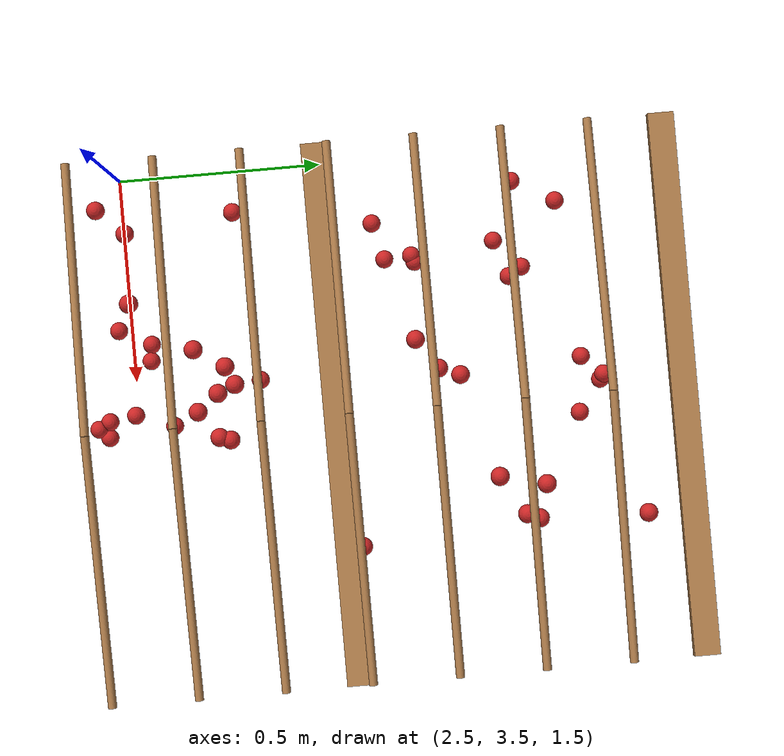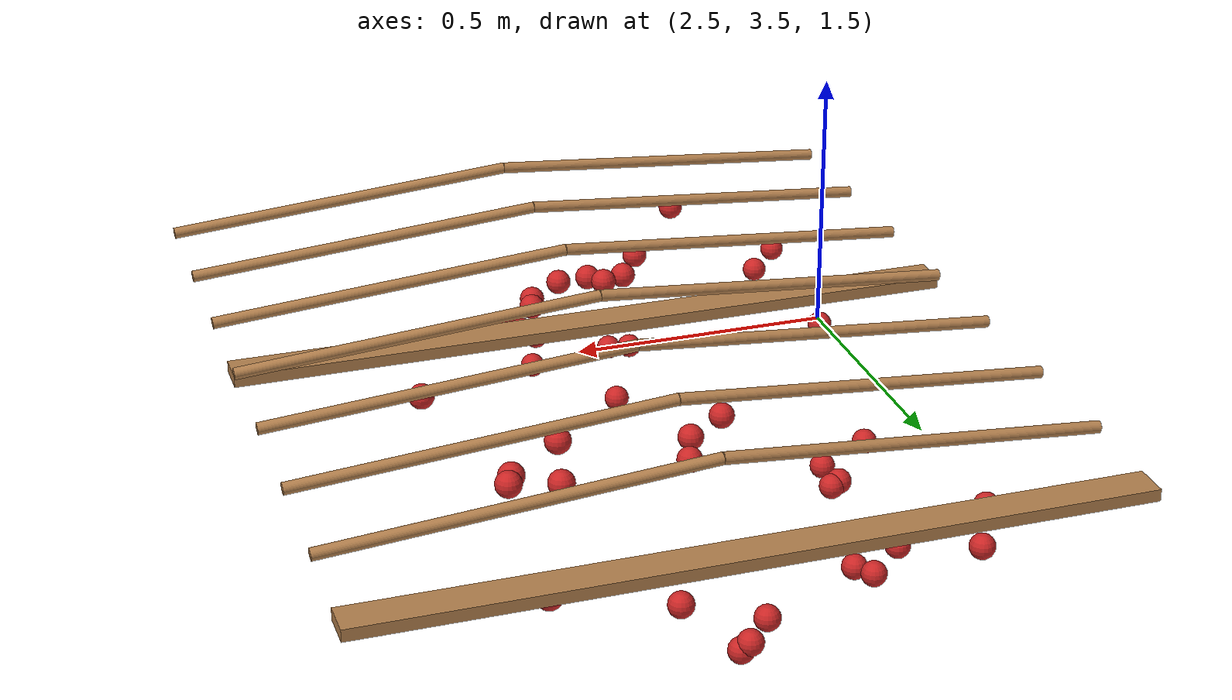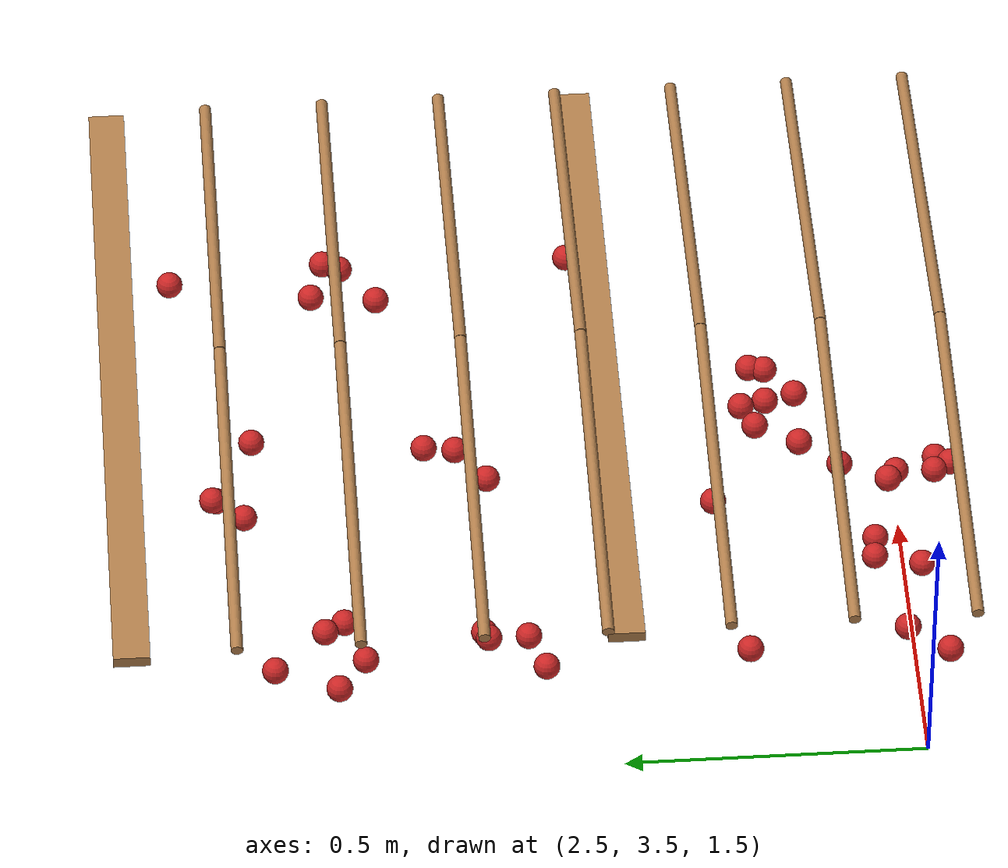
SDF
<sdf version="1.4">
 <model name="pergola">
  <link name="beam_19">
   <pose>3.125 4.0 1.81 0 0 0</pose>
   <collision name="collision"><geometry><box><size>1.25 0.06 0.02</size></box></geometry></collision>
   <visual name="visual">
    <geometry><box><size>1.25 0.06 0.02</size></box></geometry>
    <material><script><name>Gazebo/Wood</name></script></material>
   </visual>
   <inertial>
    <mass>5</mass>
    <inertia>
     <ixx>0.0016666666666666668</ixx>
     <ixy>0.0</ixy>
     <ixz>0.0</ixz>
     <iyy>0.6525416666666667</iyy>
     <iyz>0.0</iyz>
     <izz>0.6512083333333333</izz>
    </inertia>
   </inertial>
  </link>
  <link name="beam_20">
   <pose>3.125 4.800000000000001 1.81 0 0 0</pose>
   <collision name="collision"><geometry><box><size>1.25 0.06 0.02</size></box></geometry></collision>
   <visual name="visual">
    <geometry><box><size>1.25 0.06 0.02</size></box></geometry>
    <material><script><name>Gazebo/Wood</name></script></material>
   </visual>
   <inertial>
    <mass>5</mass>
    <inertia>
     <ixx>0.0016666666666666668</ixx>
     <ixy>0.0</ixy>
     <ixz>0.0</ixz>
     <iyy>0.6525416666666667</iyy>
     <iyz>0.0</iyz>
     <izz>0.6512083333333333</izz>
    </inertia>
   </inertial>
  </link>
  <link name="vine_130">
   <pose>2.8125 3.43 1.85 0 1.4909663410826592 0</pose>
   <collision name="collision">
    <geometry><cylinder><radius>0.01</radius><length>0.6269968101992226</length></cylinder></geometry>
   </collision>
   <visual name="visual">
    <geometry><cylinder><radius>0.01</radius><length>0.6269968101992226</length></cylinder></geometry>
    <material><script><name>Gazebo/WoodFloor</name></script></material>
   </visual>
   <inertial>
    <mass>5</mass>
    <inertia>
     <ixx>0.1639270833333333</ixx>
     <ixy>0.0</ixy>
     <ixz>0.0</ixz>
     <iyy>0.1639270833333333</iyy>
     <iyz>0.0</iyz>
     <izz>0.00025</izz>
    </inertia>
   </inertial>
  </link>
  <link name="vine_131">
   <pose>3.4375 3.43 1.85 0 -1.4909663410826592 0</pose>
   <collision name="collision">
    <geometry><cylinder><radius>0.01</radius><length>0.6269968101992226</length></cylinder></geometry>
   </collision>
   <visual name="visual">
    <geometry><cylinder><radius>0.01</radius><length>0.6269968101992226</length></cylinder></geometry>
    <material><script><name>Gazebo/WoodFloor</name></script></material>
   </visual>
   <inertial>
    <mass>5</mass>
    <inertia>
     <ixx>0.1639270833333333</ixx>
     <ixy>0.0</ixy>
     <ixz>0.0</ixz>
     <iyy>0.1639270833333333</iyy>
     <iyz>0.0</iyz>
     <izz>0.00025</izz>
    </inertia>
   </inertial>
  </link>
  <link name="vine_132">
   <pose>2.8125 3.63 1.85 0 1.4909663410826592 0</pose>
   <collision name="collision">
    <geometry><cylinder><radius>0.01</radius><length>0.6269968101992226</length></cylinder></geometry>
   </collision>
   <visual name="visual">
    <geometry><cylinder><radius>0.01</radius><length>0.6269968101992226</length></cylinder></geometry>
    <material><script><name>Gazebo/WoodFloor</name></script></material>
   </visual>
   <inertial>
    <mass>5</mass>
    <inertia>
     <ixx>0.1639270833333333</ixx>
     <ixy>0.0</ixy>
     <ixz>0.0</ixz>
     <iyy>0.1639270833333333</iyy>
     <iyz>0.0</iyz>
     <izz>0.00025</izz>
    </inertia>
   </inertial>
  </link>
  <link name="vine_133">
   <pose>3.4375 3.63 1.85 0 -1.4909663410826592 0</pose>
   <collision name="collision">
    <geometry><cylinder><radius>0.01</radius><length>0.6269968101992226</length></cylinder></geometry>
   </collision>
   <visual name="visual">
    <geometry><cylinder><radius>0.01</radius><length>0.6269968101992226</length></cylinder></geometry>
    <material><script><name>Gazebo/WoodFloor</name></script></material>
   </visual>
   <inertial>
    <mass>5</mass>
    <inertia>
     <ixx>0.1639270833333333</ixx>
     <ixy>0.0</ixy>
     <ixz>0.0</ixz>
     <iyy>0.1639270833333333</iyy>
     <iyz>0.0</iyz>
     <izz>0.00025</izz>
    </inertia>
   </inertial>
  </link>
  <link name="vine_134">
   <pose>2.8125 3.83 1.85 0 1.4909663410826592 0</pose>
   <collision name="collision">
    <geometry><cylinder><radius>0.01</radius><length>0.6269968101992226</length></cylinder></geometry>
   </collision>
   <visual name="visual">
    <geometry><cylinder><radius>0.01</radius><length>0.6269968101992226</length></cylinder></geometry>
    <material><script><name>Gazebo/WoodFloor</name></script></material>
   </visual>
   <inertial>
    <mass>5</mass>
    <inertia>
     <ixx>0.1639270833333333</ixx>
     <ixy>0.0</ixy>
     <ixz>0.0</ixz>
     <iyy>0.1639270833333333</iyy>
     <iyz>0.0</iyz>
     <izz>0.00025</izz>
    </inertia>
   </inertial>
  </link>
  <link name="vine_135">
   <pose>3.4375 3.83 1.85 0 -1.4909663410826592 0</pose>
   <collision name="collision">
    <geometry><cylinder><radius>0.01</radius><length>0.6269968101992226</length></cylinder></geometry>
   </collision>
   <visual name="visual">
    <geometry><cylinder><radius>0.01</radius><length>0.6269968101992226</length></cylinder></geometry>
    <material><script><name>Gazebo/WoodFloor</name></script></material>
   </visual>
   <inertial>
    <mass>5</mass>
    <inertia>
     <ixx>0.1639270833333333</ixx>
     <ixy>0.0</ixy>
     <ixz>0.0</ixz>
     <iyy>0.1639270833333333</iyy>
     <iyz>0.0</iyz>
     <izz>0.00025</izz>
    </inertia>
   </inertial>
  </link>
  <link name="vine_136">
   <pose>2.8125 4.03 1.85 0 1.4909663410826592 0</pose>
   <collision name="collision">
    <geometry><cylinder><radius>0.01</radius><length>0.6269968101992226</length></cylinder></geometry>
   </collision>
   <visual name="visual">
    <geometry><cylinder><radius>0.01</radius><length>0.6269968101992226</length></cylinder></geometry>
    <material><script><name>Gazebo/WoodFloor</name></script></material>
   </visual>
   <inertial>
    <mass>5</mass>
    <inertia>
     <ixx>0.1639270833333333</ixx>
     <ixy>0.0</ixy>
     <ixz>0.0</ixz>
     <iyy>0.1639270833333333</iyy>
     <iyz>0.0</iyz>
     <izz>0.00025</izz>
    </inertia>
   </inertial>
  </link>
  <link name="vine_137">
   <pose>3.4375 4.03 1.85 0 -1.4909663410826592 0</pose>
   <collision name="collision">
    <geometry><cylinder><radius>0.01</radius><length>0.6269968101992226</length></cylinder></geometry>
   </collision>
   <visual name="visual">
    <geometry><cylinder><radius>0.01</radius><length>0.6269968101992226</length></cylinder></geometry>
    <material><script><name>Gazebo/WoodFloor</name></script></material>
   </visual>
   <inertial>
    <mass>5</mass>
    <inertia>
     <ixx>0.1639270833333333</ixx>
     <ixy>0.0</ixy>
     <ixz>0.0</ixz>
     <iyy>0.1639270833333333</iyy>
     <iyz>0.0</iyz>
     <izz>0.00025</izz>
    </inertia>
   </inertial>
  </link>
  <link name="vine_138">
   <pose>2.8125 4.23 1.85 0 1.4909663410826592 0</pose>
   <collision name="collision">
    <geometry><cylinder><radius>0.01</radius><length>0.6269968101992226</length></cylinder></geometry>
   </collision>
   <visual name="visual">
    <geometry><cylinder><radius>0.01</radius><length>0.6269968101992226</length></cylinder></geometry>
    <material><script><name>Gazebo/WoodFloor</name></script></material>
   </visual>
   <inertial>
    <mass>5</mass>
    <inertia>
     <ixx>0.1639270833333333</ixx>
     <ixy>0.0</ixy>
     <ixz>0.0</ixz>
     <iyy>0.1639270833333333</iyy>
     <iyz>0.0</iyz>
     <izz>0.00025</izz>
    </inertia>
   </inertial>
  </link>
  <link name="vine_139">
   <pose>3.4375 4.23 1.85 0 -1.4909663410826592 0</pose>
   <collision name="collision">
    <geometry><cylinder><radius>0.01</radius><length>0.6269968101992226</length></cylinder></geometry>
   </collision>
   <visual name="visual">
    <geometry><cylinder><radius>0.01</radius><length>0.6269968101992226</length></cylinder></geometry>
    <material><script><name>Gazebo/WoodFloor</name></script></material>
   </visual>
   <inertial>
    <mass>5</mass>
    <inertia>
     <ixx>0.1639270833333333</ixx>
     <ixy>0.0</ixy>
     <ixz>0.0</ixz>
     <iyy>0.1639270833333333</iyy>
     <iyz>0.0</iyz>
     <izz>0.00025</izz>
    </inertia>
   </inertial>
  </link>
  <link name="vine_140">
   <pose>2.8125 4.430000000000001 1.85 0 1.4909663410826592 0</pose>
   <collision name="collision">
    <geometry><cylinder><radius>0.01</radius><length>0.6269968101992226</length></cylinder></geometry>
   </collision>
   <visual name="visual">
    <geometry><cylinder><radius>0.01</radius><length>0.6269968101992226</length></cylinder></geometry>
    <material><script><name>Gazebo/WoodFloor</name></script></material>
   </visual>
   <inertial>
    <mass>5</mass>
    <inertia>
     <ixx>0.1639270833333333</ixx>
     <ixy>0.0</ixy>
     <ixz>0.0</ixz>
     <iyy>0.1639270833333333</iyy>
     <iyz>0.0</iyz>
     <izz>0.00025</izz>
    </inertia>
   </inertial>
  </link>
  <link name="vine_141">
   <pose>3.4375 4.430000000000001 1.85 0 -1.4909663410826592 0</pose>
   <collision name="collision">
    <geometry><cylinder><radius>0.01</radius><length>0.6269968101992226</length></cylinder></geometry>
   </collision>
   <visual name="visual">
    <geometry><cylinder><radius>0.01</radius><length>0.6269968101992226</length></cylinder></geometry>
    <material><script><name>Gazebo/WoodFloor</name></script></material>
   </visual>
   <inertial>
    <mass>5</mass>
    <inertia>
     <ixx>0.1639270833333333</ixx>
     <ixy>0.0</ixy>
     <ixz>0.0</ixz>
     <iyy>0.1639270833333333</iyy>
     <iyz>0.0</iyz>
     <izz>0.00025</izz>
    </inertia>
   </inertial>
  </link>
  <link name="vine_142">
   <pose>2.8125 4.630000000000001 1.85 0 1.4909663410826592 0</pose>
   <collision name="collision">
    <geometry><cylinder><radius>0.01</radius><length>0.6269968101992226</length></cylinder></geometry>
   </collision>
   <visual name="visual">
    <geometry><cylinder><radius>0.01</radius><length>0.6269968101992226</length></cylinder></geometry>
    <material><script><name>Gazebo/WoodFloor</name></script></material>
   </visual>
   <inertial>
    <mass>5</mass>
    <inertia>
     <ixx>0.1639270833333333</ixx>
     <ixy>0.0</ixy>
     <ixz>0.0</ixz>
     <iyy>0.1639270833333333</iyy>
     <iyz>0.0</iyz>
     <izz>0.00025</izz>
    </inertia>
   </inertial>
  </link>
  <link name="vine_143">
   <pose>3.4375 4.630000000000001 1.85 0 -1.4909663410826592 0</pose>
   <collision name="collision">
    <geometry><cylinder><radius>0.01</radius><length>0.6269968101992226</length></cylinder></geometry>
   </collision>
   <visual name="visual">
    <geometry><cylinder><radius>0.01</radius><length>0.6269968101992226</length></cylinder></geometry>
    <material><script><name>Gazebo/WoodFloor</name></script></material>
   </visual>
   <inertial>
    <mass>5</mass>
    <inertia>
     <ixx>0.1639270833333333</ixx>
     <ixy>0.0</ixy>
     <ixz>0.0</ixz>
     <iyy>0.1639270833333333</iyy>
     <iyz>0.0</iyz>
     <izz>0.00025</izz>
    </inertia>
   </inertial>
  </link>
  <link name="fruit_9">
   <pose>3.1706194488828547 4.582128828585665 1.6010213650760738 0 0 0</pose>
   <collision name="fruit_collision_9"><geometry><sphere><radius>0.022</radius></sphere></geometry></collision>
   <visual name="visual">
    <geometry><sphere><radius>0.022</radius></sphere></geometry>
    <material><script><name>Gazebo/Red</name></script></material>
   </visual>
   <inertial>
    <mass>0.05</mass>
    <inertia>
     <ixx>9.679999999999999e-06</ixx>
     <ixy>0.0</ixy>
     <ixz>0.0</ixz>
     <iyy>9.679999999999999e-06</iyy>
     <iyz>0.0</iyz>
     <izz>9.679999999999999e-06</izz>
    </inertia>
   </inertial>
   <sensor name="fruit_contact_9" type="contact">
    <plugin name="contact_plugin_9" filename="libcontact_plugin.so"/>
    <contact><collision>fruit_collision_9</collision><topic>fruit_contact_topic_9</topic></contact>
   </sensor>
  </link>
  <link name="fruit_13">
   <pose>3.0241924940864644 3.8120994836444884 1.557827054420233 0 0 0</pose>
   <collision name="fruit_collision_13"><geometry><sphere><radius>0.022</radius></sphere></geometry></collision>
   <visual name="visual">
    <geometry><sphere><radius>0.022</radius></sphere></geometry>
    <material><script><name>Gazebo/Red</name></script></material>
   </visual>
   <inertial>
    <mass>0.05</mass>
    <inertia>
     <ixx>9.679999999999999e-06</ixx>
     <ixy>0.0</ixy>
     <ixz>0.0</ixz>
     <iyy>9.679999999999999e-06</iyy>
     <iyz>0.0</iyz>
     <izz>9.679999999999999e-06</izz>
    </inertia>
   </inertial>
   <sensor name="fruit_contact_13" type="contact">
    <plugin name="contact_plugin_13" filename="libcontact_plugin.so"/>
    <contact><collision>fruit_collision_13</collision><topic>fruit_contact_topic_13</topic></contact>
   </sensor>
  </link>
  <link name="fruit_24">
   <pose>2.5869848173927865 3.458833493302506 1.6461823713579882 0 0 0</pose>
   <collision name="fruit_collision_24"><geometry><sphere><radius>0.022</radius></sphere></geometry></collision>
   <visual name="visual">
    <geometry><sphere><radius>0.022</radius></sphere></geometry>
    <material><script><name>Gazebo/Red</name></script></material>
   </visual>
   <inertial>
    <mass>0.05</mass>
    <inertia>
     <ixx>9.679999999999999e-06</ixx>
     <ixy>0.0</ixy>
     <ixz>0.0</ixz>
     <iyy>9.679999999999999e-06</iyy>
     <iyz>0.0</iyz>
     <izz>9.679999999999999e-06</izz>
    </inertia>
   </inertial>
   <sensor name="fruit_contact_24" type="contact">
    <plugin name="contact_plugin_24" filename="libcontact_plugin.so"/>
    <contact><collision>fruit_collision_24</collision><topic>fruit_contact_topic_24</topic></contact>
   </sensor>
  </link>
  <link name="fruit_25">
   <pose>2.8298835578406236 3.5435453280996385 1.8018875035521784 0 0 0</pose>
   <collision name="fruit_collision_25"><geometry><sphere><radius>0.022</radius></sphere></geometry></collision>
   <visual name="visual">
    <geometry><sphere><radius>0.022</radius></sphere></geometry>
    <material><script><name>Gazebo/Red</name></script></material>
   </visual>
   <inertial>
    <mass>0.05</mass>
    <inertia>
     <ixx>9.679999999999999e-06</ixx>
     <ixy>0.0</ixy>
     <ixz>0.0</ixz>
     <iyy>9.679999999999999e-06</iyy>
     <iyz>0.0</iyz>
     <izz>9.679999999999999e-06</izz>
    </inertia>
   </inertial>
   <sensor name="fruit_contact_25" type="contact">
    <plugin name="contact_plugin_25" filename="libcontact_plugin.so"/>
    <contact><collision>fruit_collision_25</collision><topic>fruit_contact_topic_25</topic></contact>
   </sensor>
  </link>
  <link name="fruit_30">
   <pose>3.0346323195168607 4.6011146583699105 1.5620622028522035 0 0 0</pose>
   <collision name="fruit_collision_30"><geometry><sphere><radius>0.022</radius></sphere></geometry></collision>
   <visual name="visual">
    <geometry><sphere><radius>0.022</radius></sphere></geometry>
    <material><script><name>Gazebo/Red</name></script></material>
   </visual>
   <inertial>
    <mass>0.05</mass>
    <inertia>
     <ixx>9.679999999999999e-06</ixx>
     <ixy>0.0</ixy>
     <ixz>0.0</ixz>
     <iyy>9.679999999999999e-06</iyy>
     <iyz>0.0</iyz>
     <izz>9.679999999999999e-06</izz>
    </inertia>
   </inertial>
   <sensor name="fruit_contact_30" type="contact">
    <plugin name="contact_plugin_30" filename="libcontact_plugin.so"/>
    <contact><collision>fruit_collision_30</collision><topic>fruit_contact_topic_30</topic></contact>
   </sensor>
  </link>
  <link name="fruit_36">
   <pose>2.729999207557806 4.413227245271264 1.5306402839849127 0 0 0</pose>
   <collision name="fruit_collision_36"><geometry><sphere><radius>0.022</radius></sphere></geometry></collision>
   <visual name="visual">
    <geometry><sphere><radius>0.022</radius></sphere></geometry>
    <material><script><name>Gazebo/Red</name></script></material>
   </visual>
   <inertial>
    <mass>0.05</mass>
    <inertia>
     <ixx>9.679999999999999e-06</ixx>
     <ixy>0.0</ixy>
     <ixz>0.0</ixz>
     <iyy>9.679999999999999e-06</iyy>
     <iyz>0.0</iyz>
     <izz>9.679999999999999e-06</izz>
    </inertia>
   </inertial>
   <sensor name="fruit_contact_36" type="contact">
    <plugin name="contact_plugin_36" filename="libcontact_plugin.so"/>
    <contact><collision>fruit_collision_36</collision><topic>fruit_contact_topic_36</topic></contact>
   </sensor>
  </link>
  <link name="fruit_41">
   <pose>2.946519357891524 3.6793704373475613 1.7759255390672721 0 0 0</pose>
   <collision name="fruit_collision_41"><geometry><sphere><radius>0.022</radius></sphere></geometry></collision>
   <visual name="visual">
    <geometry><sphere><radius>0.022</radius></sphere></geometry>
    <material><script><name>Gazebo/Red</name></script></material>
   </visual>
   <inertial>
    <mass>0.05</mass>
    <inertia>
     <ixx>9.679999999999999e-06</ixx>
     <ixy>0.0</ixy>
     <ixz>0.0</ixz>
     <iyy>9.679999999999999e-06</iyy>
     <iyz>0.0</iyz>
     <izz>9.679999999999999e-06</izz>
    </inertia>
   </inertial>
   <sensor name="fruit_contact_41" type="contact">
    <plugin name="contact_plugin_41" filename="libcontact_plugin.so"/>
    <contact><collision>fruit_collision_41</collision><topic>fruit_contact_topic_41</topic></contact>
   </sensor>
  </link>
  <link name="fruit_55">
   <pose>2.6178372957763423 3.7852578222495996 1.6355661353051802 0 0 0</pose>
   <collision name="fruit_collision_55"><geometry><sphere><radius>0.022</radius></sphere></geometry></collision>
   <visual name="visual">
    <geometry><sphere><radius>0.022</radius></sphere></geometry>
    <material><script><name>Gazebo/Red</name></script></material>
   </visual>
   <inertial>
    <mass>0.05</mass>
    <inertia>
     <ixx>9.679999999999999e-06</ixx>
     <ixy>0.0</ixy>
     <ixz>0.0</ixz>
     <iyy>9.679999999999999e-06</iyy>
     <iyz>0.0</iyz>
     <izz>9.679999999999999e-06</izz>
    </inertia>
   </inertial>
   <sensor name="fruit_contact_55" type="contact">
    <plugin name="contact_plugin_55" filename="libcontact_plugin.so"/>
    <contact><collision>fruit_collision_55</collision><topic>fruit_contact_topic_55</topic></contact>
   </sensor>
  </link>
  <link name="fruit_102">
   <pose>2.873280945198227 3.473128103739563 1.5432680907960878 0 0 0</pose>
   <collision name="fruit_collision_102"><geometry><sphere><radius>0.022</radius></sphere></geometry></collision>
   <visual name="visual">
    <geometry><sphere><radius>0.022</radius></sphere></geometry>
    <material><script><name>Gazebo/Red</name></script></material>
   </visual>
   <inertial>
    <mass>0.05</mass>
    <inertia>
     <ixx>9.679999999999999e-06</ixx>
     <ixy>0.0</ixy>
     <ixz>0.0</ixz>
     <iyy>9.679999999999999e-06</iyy>
     <iyz>0.0</iyz>
     <izz>9.679999999999999e-06</izz>
    </inertia>
   </inertial>
   <sensor name="fruit_contact_102" type="contact">
    <plugin name="contact_plugin_102" filename="libcontact_plugin.so"/>
    <contact><collision>fruit_collision_102</collision><topic>fruit_contact_topic_102</topic></contact>
   </sensor>
  </link>
  <link name="fruit_115">
   <pose>3.3006705073943508 4.36245342273447 1.7969701557057314 0 0 0</pose>
   <collision name="fruit_collision_115"><geometry><sphere><radius>0.022</radius></sphere></geometry></collision>
   <visual name="visual">
    <geometry><sphere><radius>0.022</radius></sphere></geometry>
    <material><script><name>Gazebo/Red</name></script></material>
   </visual>
   <inertial>
    <mass>0.05</mass>
    <inertia>
     <ixx>9.679999999999999e-06</ixx>
     <ixy>0.0</ixy>
     <ixz>0.0</ixz>
     <iyy>9.679999999999999e-06</iyy>
     <iyz>0.0</iyz>
     <izz>9.679999999999999e-06</izz>
    </inertia>
   </inertial>
   <sensor name="fruit_contact_115" type="contact">
    <plugin name="contact_plugin_115" filename="libcontact_plugin.so"/>
    <contact><collision>fruit_collision_115</collision><topic>fruit_contact_topic_115</topic></contact>
   </sensor>
  </link>
  <link name="fruit_217">
   <pose>3.091500901791731 3.6739565588209064 1.7398791859802067 0 0 0</pose>
   <collision name="fruit_collision_217"><geometry><sphere><radius>0.022</radius></sphere></geometry></collision>
   <visual name="visual">
    <geometry><sphere><radius>0.022</radius></sphere></geometry>
    <material><script><name>Gazebo/Red</name></script></material>
   </visual>
   <inertial>
    <mass>0.05</mass>
    <inertia>
     <ixx>9.679999999999999e-06</ixx>
     <ixy>0.0</ixy>
     <ixz>0.0</ixz>
     <iyy>9.679999999999999e-06</iyy>
     <iyz>0.0</iyz>
     <izz>9.679999999999999e-06</izz>
    </inertia>
   </inertial>
   <sensor name="fruit_contact_217" type="contact">
    <plugin name="contact_plugin_217" filename="libcontact_plugin.so"/>
    <contact><collision>fruit_collision_217</collision><topic>fruit_contact_topic_217</topic></contact>
   </sensor>
  </link>
  <link name="fruit_220">
   <pose>2.9646235617176955 4.197306456371322 1.7043793130841007 0 0 0</pose>
   <collision name="fruit_collision_220"><geometry><sphere><radius>0.022</radius></sphere></geometry></collision>
   <visual name="visual">
    <geometry><sphere><radius>0.022</radius></sphere></geometry>
    <material><script><name>Gazebo/Red</name></script></material>
   </visual>
   <inertial>
    <mass>0.05</mass>
    <inertia>
     <ixx>9.679999999999999e-06</ixx>
     <ixy>0.0</ixy>
     <ixz>0.0</ixz>
     <iyy>9.679999999999999e-06</iyy>
     <iyz>0.0</iyz>
     <izz>9.679999999999999e-06</izz>
    </inertia>
   </inertial>
   <sensor name="fruit_contact_220" type="contact">
    <plugin name="contact_plugin_220" filename="libcontact_plugin.so"/>
    <contact><collision>fruit_collision_220</collision><topic>fruit_contact_topic_220</topic></contact>
   </sensor>
  </link>
  <link name="fruit_255">
   <pose>3.418195301593599 4.706490446653062 1.7373328132583743 0 0 0</pose>
   <collision name="fruit_collision_255"><geometry><sphere><radius>0.022</radius></sphere></geometry></collision>
   <visual name="visual">
    <geometry><sphere><radius>0.022</radius></sphere></geometry>
    <material><script><name>Gazebo/Red</name></script></material>
   </visual>
   <inertial>
    <mass>0.05</mass>
    <inertia>
     <ixx>9.679999999999999e-06</ixx>
     <ixy>0.0</ixy>
     <ixz>0.0</ixz>
     <iyy>9.679999999999999e-06</iyy>
     <iyz>0.0</iyz>
     <izz>9.679999999999999e-06</izz>
    </inertia>
   </inertial>
   <sensor name="fruit_contact_255" type="contact">
    <plugin name="contact_plugin_255" filename="libcontact_plugin.so"/>
    <contact><collision>fruit_collision_255</collision><topic>fruit_contact_topic_255</topic></contact>
   </sensor>
  </link>
  <link name="fruit_257">
   <pose>2.6655330443276504 4.1173542438732715 1.5645718883328332 0 0 0</pose>
   <collision name="fruit_collision_257"><geometry><sphere><radius>0.022</radius></sphere></geometry></collision>
   <visual name="visual">
    <geometry><sphere><radius>0.022</radius></sphere></geometry>
    <material><script><name>Gazebo/Red</name></script></material>
   </visual>
   <inertial>
    <mass>0.05</mass>
    <inertia>
     <ixx>9.679999999999999e-06</ixx>
     <ixy>0.0</ixy>
     <ixz>0.0</ixz>
     <iyy>9.679999999999999e-06</iyy>
     <iyz>0.0</iyz>
     <izz>9.679999999999999e-06</izz>
    </inertia>
   </inertial>
   <sensor name="fruit_contact_257" type="contact">
    <plugin name="contact_plugin_257" filename="libcontact_plugin.so"/>
    <contact><collision>fruit_collision_257</collision><topic>fruit_contact_topic_257</topic></contact>
   </sensor>
  </link>
  <link name="fruit_266">
   <pose>3.43965045791912 4.0327086980941145 1.7355043765761275 0 0 0</pose>
   <collision name="fruit_collision_266"><geometry><sphere><radius>0.022</radius></sphere></geometry></collision>
   <visual name="visual">
    <geometry><sphere><radius>0.022</radius></sphere></geometry>
    <material><script><name>Gazebo/Red</name></script></material>
   </visual>
   <inertial>
    <mass>0.05</mass>
    <inertia>
     <ixx>9.679999999999999e-06</ixx>
     <ixy>0.0</ixy>
     <ixz>0.0</ixz>
     <iyy>9.679999999999999e-06</iyy>
     <iyz>0.0</iyz>
     <izz>9.679999999999999e-06</izz>
    </inertia>
   </inertial>
   <sensor name="fruit_contact_266" type="contact">
    <plugin name="contact_plugin_266" filename="libcontact_plugin.so"/>
    <contact><collision>fruit_collision_266</collision><topic>fruit_contact_topic_266</topic></contact>
   </sensor>
  </link>
  <link name="fruit_275">
   <pose>2.597756186652286 4.462374569956772 1.6110161774611005 0 0 0</pose>
   <collision name="fruit_collision_275"><geometry><sphere><radius>0.022</radius></sphere></geometry></collision>
   <visual name="visual">
    <geometry><sphere><radius>0.022</radius></sphere></geometry>
    <material><script><name>Gazebo/Red</name></script></material>
   </visual>
   <inertial>
    <mass>0.05</mass>
    <inertia>
     <ixx>9.679999999999999e-06</ixx>
     <ixy>0.0</ixy>
     <ixz>0.0</ixz>
     <iyy>9.679999999999999e-06</iyy>
     <iyz>0.0</iyz>
     <izz>9.679999999999999e-06</izz>
    </inertia>
   </inertial>
   <sensor name="fruit_contact_275" type="contact">
    <plugin name="contact_plugin_275" filename="libcontact_plugin.so"/>
    <contact><collision>fruit_collision_275</collision><topic>fruit_contact_topic_275</topic></contact>
   </sensor>
  </link>
  <link name="fruit_332">
   <pose>3.0849323565641327 3.4971374566375557 1.546161558518312 0 0 0</pose>
   <collision name="fruit_collision_332"><geometry><sphere><radius>0.022</radius></sphere></geometry></collision>
   <visual name="visual">
    <geometry><sphere><radius>0.022</radius></sphere></geometry>
    <material><script><name>Gazebo/Red</name></script></material>
   </visual>
   <inertial>
    <mass>0.05</mass>
    <inertia>
     <ixx>9.679999999999999e-06</ixx>
     <ixy>0.0</ixy>
     <ixz>0.0</ixz>
     <iyy>9.679999999999999e-06</iyy>
     <iyz>0.0</iyz>
     <izz>9.679999999999999e-06</izz>
    </inertia>
   </inertial>
   <sensor name="fruit_contact_332" type="contact">
    <plugin name="contact_plugin_332" filename="libcontact_plugin.so"/>
    <contact><collision>fruit_collision_332</collision><topic>fruit_contact_topic_332</topic></contact>
   </sensor>
  </link>
  <link name="fruit_420">
   <pose>3.094448519007601 4.646190376860875 1.542593000683849 0 0 0</pose>
   <collision name="fruit_collision_420"><geometry><sphere><radius>0.022</radius></sphere></geometry></collision>
   <visual name="visual">
    <geometry><sphere><radius>0.022</radius></sphere></geometry>
    <material><script><name>Gazebo/Red</name></script></material>
   </visual>
   <inertial>
    <mass>0.05</mass>
    <inertia>
     <ixx>9.679999999999999e-06</ixx>
     <ixy>0.0</ixy>
     <ixz>0.0</ixz>
     <iyy>9.679999999999999e-06</iyy>
     <iyz>0.0</iyz>
     <izz>9.679999999999999e-06</izz>
    </inertia>
   </inertial>
   <sensor name="fruit_contact_420" type="contact">
    <plugin name="contact_plugin_420" filename="libcontact_plugin.so"/>
    <contact><collision>fruit_collision_420</collision><topic>fruit_contact_topic_420</topic></contact>
   </sensor>
  </link>
  <link name="fruit_421">
   <pose>2.6477926922065302 3.522730952043322 1.6377167505147385 0 0 0</pose>
   <collision name="fruit_collision_421"><geometry><sphere><radius>0.022</radius></sphere></geometry></collision>
   <visual name="visual">
    <geometry><sphere><radius>0.022</radius></sphere></geometry>
    <material><script><name>Gazebo/Red</name></script></material>
   </visual>
   <inertial>
    <mass>0.05</mass>
    <inertia>
     <ixx>9.679999999999999e-06</ixx>
     <ixy>0.0</ixy>
     <ixz>0.0</ixz>
     <iyy>9.679999999999999e-06</iyy>
     <iyz>0.0</iyz>
     <izz>9.679999999999999e-06</izz>
    </inertia>
   </inertial>
   <sensor name="fruit_contact_421" type="contact">
    <plugin name="contact_plugin_421" filename="libcontact_plugin.so"/>
    <contact><collision>fruit_collision_421</collision><topic>fruit_contact_topic_421</topic></contact>
   </sensor>
  </link>
  <link name="fruit_426">
   <pose>3.0369667133810427 4.246352415149162 1.7005164907721424 0 0 0</pose>
   <collision name="fruit_collision_426"><geometry><sphere><radius>0.022</radius></sphere></geometry></collision>
   <visual name="visual">
    <geometry><sphere><radius>0.022</radius></sphere></geometry>
    <material><script><name>Gazebo/Red</name></script></material>
   </visual>
   <inertial>
    <mass>0.05</mass>
    <inertia>
     <ixx>9.679999999999999e-06</ixx>
     <ixy>0.0</ixy>
     <ixz>0.0</ixz>
     <iyy>9.679999999999999e-06</iyy>
     <iyz>0.0</iyz>
     <izz>9.679999999999999e-06</izz>
    </inertia>
   </inertial>
   <sensor name="fruit_contact_426" type="contact">
    <plugin name="contact_plugin_426" filename="libcontact_plugin.so"/>
    <contact><collision>fruit_collision_426</collision><topic>fruit_contact_topic_426</topic></contact>
   </sensor>
  </link>
  <link name="fruit_471">
   <pose>3.0952662520108634 3.4302220067181572 1.5329002542330743 0 0 0</pose>
   <collision name="fruit_collision_471"><geometry><sphere><radius>0.022</radius></sphere></geometry></collision>
   <visual name="visual">
    <geometry><sphere><radius>0.022</radius></sphere></geometry>
    <material><script><name>Gazebo/Red</name></script></material>
   </visual>
   <inertial>
    <mass>0.05</mass>
    <inertia>
     <ixx>9.679999999999999e-06</ixx>
     <ixy>0.0</ixy>
     <ixz>0.0</ixz>
     <iyy>9.679999999999999e-06</iyy>
     <iyz>0.0</iyz>
     <izz>9.679999999999999e-06</izz>
    </inertia>
   </inertial>
   <sensor name="fruit_contact_471" type="contact">
    <plugin name="contact_plugin_471" filename="libcontact_plugin.so"/>
    <contact><collision>fruit_collision_471</collision><topic>fruit_contact_topic_471</topic></contact>
   </sensor>
  </link>
  <link name="fruit_496">
   <pose>2.799908362666752 4.477391473351038 1.5265446265430491 0 0 0</pose>
   <collision name="fruit_collision_496"><geometry><sphere><radius>0.022</radius></sphere></geometry></collision>
   <visual name="visual">
    <geometry><sphere><radius>0.022</radius></sphere></geometry>
    <material><script><name>Gazebo/Red</name></script></material>
   </visual>
   <inertial>
    <mass>0.05</mass>
    <inertia>
     <ixx>9.679999999999999e-06</ixx>
     <ixy>0.0</ixy>
     <ixz>0.0</ixz>
     <iyy>9.679999999999999e-06</iyy>
     <iyz>0.0</iyz>
     <izz>9.679999999999999e-06</izz>
    </inertia>
   </inertial>
   <sensor name="fruit_contact_496" type="contact">
    <plugin name="contact_plugin_496" filename="libcontact_plugin.so"/>
    <contact><collision>fruit_collision_496</collision><topic>fruit_contact_topic_496</topic></contact>
   </sensor>
  </link>
  <link name="fruit_523">
   <pose>3.118847060990309 3.5891098603574636 1.5336342071781235 0 0 0</pose>
   <collision name="fruit_collision_523"><geometry><sphere><radius>0.022</radius></sphere></geometry></collision>
   <visual name="visual">
    <geometry><sphere><radius>0.022</radius></sphere></geometry>
    <material><script><name>Gazebo/Red</name></script></material>
   </visual>
   <inertial>
    <mass>0.05</mass>
    <inertia>
     <ixx>9.679999999999999e-06</ixx>
     <ixy>0.0</ixy>
     <ixz>0.0</ixz>
     <iyy>9.679999999999999e-06</iyy>
     <iyz>0.0</iyz>
     <izz>9.679999999999999e-06</izz>
    </inertia>
   </inertial>
   <sensor name="fruit_contact_523" type="contact">
    <plugin name="contact_plugin_523" filename="libcontact_plugin.so"/>
    <contact><collision>fruit_collision_523</collision><topic>fruit_contact_topic_523</topic></contact>
   </sensor>
  </link>
  <link name="fruit_524">
   <pose>2.953328456578127 3.543675422529953 1.5250765736242662 0 0 0</pose>
   <collision name="fruit_collision_524"><geometry><sphere><radius>0.022</radius></sphere></geometry></collision>
   <visual name="visual">
    <geometry><sphere><radius>0.022</radius></sphere></geometry>
    <material><script><name>Gazebo/Red</name></script></material>
   </visual>
   <inertial>
    <mass>0.05</mass>
    <inertia>
     <ixx>9.679999999999999e-06</ixx>
     <ixy>0.0</ixy>
     <ixz>0.0</ixz>
     <iyy>9.679999999999999e-06</iyy>
     <iyz>0.0</iyz>
     <izz>9.679999999999999e-06</izz>
    </inertia>
   </inertial>
   <sensor name="fruit_contact_524" type="contact">
    <plugin name="contact_plugin_524" filename="libcontact_plugin.so"/>
    <contact><collision>fruit_collision_524</collision><topic>fruit_contact_topic_524</topic></contact>
   </sensor>
  </link>
  <link name="fruit_532">
   <pose>2.7540412334173787 4.141022180450563 1.5432479911560393 0 0 0</pose>
   <collision name="fruit_collision_532"><geometry><sphere><radius>0.022</radius></sphere></geometry></collision>
   <visual name="visual">
    <geometry><sphere><radius>0.022</radius></sphere></geometry>
    <material><script><name>Gazebo/Red</name></script></material>
   </visual>
   <inertial>
    <mass>0.05</mass>
    <inertia>
     <ixx>9.679999999999999e-06</ixx>
     <ixy>0.0</ixy>
     <ixz>0.0</ixz>
     <iyy>9.679999999999999e-06</iyy>
     <iyz>0.0</iyz>
     <izz>9.679999999999999e-06</izz>
    </inertia>
   </inertial>
   <sensor name="fruit_contact_532" type="contact">
    <plugin name="contact_plugin_532" filename="libcontact_plugin.so"/>
    <contact><collision>fruit_collision_532</collision><topic>fruit_contact_topic_532</topic></contact>
   </sensor>
  </link>
  <link name="fruit_538">
   <pose>3.393174321767058 4.419713217277741 1.7806180757648151 0 0 0</pose>
   <collision name="fruit_collision_538"><geometry><sphere><radius>0.022</radius></sphere></geometry></collision>
   <visual name="visual">
    <geometry><sphere><radius>0.022</radius></sphere></geometry>
    <material><script><name>Gazebo/Red</name></script></material>
   </visual>
   <inertial>
    <mass>0.05</mass>
    <inertia>
     <ixx>9.679999999999999e-06</ixx>
     <ixy>0.0</ixy>
     <ixz>0.0</ixz>
     <iyy>9.679999999999999e-06</iyy>
     <iyz>0.0</iyz>
     <izz>9.679999999999999e-06</izz>
    </inertia>
   </inertial>
   <sensor name="fruit_contact_538" type="contact">
    <plugin name="contact_plugin_538" filename="libcontact_plugin.so"/>
    <contact><collision>fruit_collision_538</collision><topic>fruit_contact_topic_538</topic></contact>
   </sensor>
  </link>
  <link name="fruit_542">
   <pose>3.327496246439408 4.470616705120183 1.783058798124924 0 0 0</pose>
   <collision name="fruit_collision_542"><geometry><sphere><radius>0.022</radius></sphere></geometry></collision>
   <visual name="visual">
    <geometry><sphere><radius>0.022</radius></sphere></geometry>
    <material><script><name>Gazebo/Red</name></script></material>
   </visual>
   <inertial>
    <mass>0.05</mass>
    <inertia>
     <ixx>9.679999999999999e-06</ixx>
     <ixy>0.0</ixy>
     <ixz>0.0</ixz>
     <iyy>9.679999999999999e-06</iyy>
     <iyz>0.0</iyz>
     <izz>9.679999999999999e-06</izz>
    </inertia>
   </inertial>
   <sensor name="fruit_contact_542" type="contact">
    <plugin name="contact_plugin_542" filename="libcontact_plugin.so"/>
    <contact><collision>fruit_collision_542</collision><topic>fruit_contact_topic_542</topic></contact>
   </sensor>
  </link>
  <link name="fruit_568">
   <pose>3.1630774609065524 3.744348360799764 1.732138348331446 0 0 0</pose>
   <collision name="fruit_collision_568"><geometry><sphere><radius>0.022</radius></sphere></geometry></collision>
   <visual name="visual">
    <geometry><sphere><radius>0.022</radius></sphere></geometry>
    <material><script><name>Gazebo/Red</name></script></material>
   </visual>
   <inertial>
    <mass>0.05</mass>
    <inertia>
     <ixx>9.679999999999999e-06</ixx>
     <ixy>0.0</ixy>
     <ixz>0.0</ixz>
     <iyy>9.679999999999999e-06</iyy>
     <iyz>0.0</iyz>
     <izz>9.679999999999999e-06</izz>
    </inertia>
   </inertial>
   <sensor name="fruit_contact_568" type="contact">
    <plugin name="contact_plugin_568" filename="libcontact_plugin.so"/>
    <contact><collision>fruit_collision_568</collision><topic>fruit_contact_topic_568</topic></contact>
   </sensor>
  </link>
  <link name="fruit_573">
   <pose>2.820551748840201 4.444327587815408 1.5249077134930276 0 0 0</pose>
   <collision name="fruit_collision_573"><geometry><sphere><radius>0.022</radius></sphere></geometry></collision>
   <visual name="visual">
    <geometry><sphere><radius>0.022</radius></sphere></geometry>
    <material><script><name>Gazebo/Red</name></script></material>
   </visual>
   <inertial>
    <mass>0.05</mass>
    <inertia>
     <ixx>9.679999999999999e-06</ixx>
     <ixy>0.0</ixy>
     <ixz>0.0</ixz>
     <iyy>9.679999999999999e-06</iyy>
     <iyz>0.0</iyz>
     <izz>9.679999999999999e-06</izz>
    </inertia>
   </inertial>
   <sensor name="fruit_contact_573" type="contact">
    <plugin name="contact_plugin_573" filename="libcontact_plugin.so"/>
    <contact><collision>fruit_collision_573</collision><topic>fruit_contact_topic_573</topic></contact>
   </sensor>
  </link>
  <link name="fruit_622">
   <pose>3.4054325409657618 4.447646994715281 1.7824618016758198 0 0 0</pose>
   <collision name="fruit_collision_622"><geometry><sphere><radius>0.022</radius></sphere></geometry></collision>
   <visual name="visual">
    <geometry><sphere><radius>0.022</radius></sphere></geometry>
    <material><script><name>Gazebo/Red</name></script></material>
   </visual>
   <inertial>
    <mass>0.05</mass>
    <inertia>
     <ixx>9.679999999999999e-06</ixx>
     <ixy>0.0</ixy>
     <ixz>0.0</ixz>
     <iyy>9.679999999999999e-06</iyy>
     <iyz>0.0</iyz>
     <izz>9.679999999999999e-06</izz>
    </inertia>
   </inertial>
   <sensor name="fruit_contact_622" type="contact">
    <plugin name="contact_plugin_622" filename="libcontact_plugin.so"/>
    <contact><collision>fruit_collision_622</collision><topic>fruit_contact_topic_622</topic></contact>
   </sensor>
  </link>
  <link name="fruit_631">
   <pose>2.7666351608113953 4.214391371372949 1.5436185779072462 0 0 0</pose>
   <collision name="fruit_collision_631"><geometry><sphere><radius>0.022</radius></sphere></geometry></collision>
   <visual name="visual">
    <geometry><sphere><radius>0.022</radius></sphere></geometry>
    <material><script><name>Gazebo/Red</name></script></material>
   </visual>
   <inertial>
    <mass>0.05</mass>
    <inertia>
     <ixx>9.679999999999999e-06</ixx>
     <ixy>0.0</ixy>
     <ixz>0.0</ixz>
     <iyy>9.679999999999999e-06</iyy>
     <iyz>0.0</iyz>
     <izz>9.679999999999999e-06</izz>
    </inertia>
   </inertial>
   <sensor name="fruit_contact_631" type="contact">
    <plugin name="contact_plugin_631" filename="libcontact_plugin.so"/>
    <contact><collision>fruit_collision_631</collision><topic>fruit_contact_topic_631</topic></contact>
   </sensor>
  </link>
  <link name="fruit_639">
   <pose>2.991980714539017 3.748987453742587 1.7722317577075377 0 0 0</pose>
   <collision name="fruit_collision_639"><geometry><sphere><radius>0.022</radius></sphere></geometry></collision>
   <visual name="visual">
    <geometry><sphere><radius>0.022</radius></sphere></geometry>
    <material><script><name>Gazebo/Red</name></script></material>
   </visual>
   <inertial>
    <mass>0.05</mass>
    <inertia>
     <ixx>9.679999999999999e-06</ixx>
     <ixy>0.0</ixy>
     <ixz>0.0</ixz>
     <iyy>9.679999999999999e-06</iyy>
     <iyz>0.0</iyz>
     <izz>9.679999999999999e-06</izz>
    </inertia>
   </inertial>
   <sensor name="fruit_contact_639" type="contact">
    <plugin name="contact_plugin_639" filename="libcontact_plugin.so"/>
    <contact><collision>fruit_collision_639</collision><topic>fruit_contact_topic_639</topic></contact>
   </sensor>
  </link>
  <link name="fruit_642">
   <pose>3.0522420925628797 3.726830653246628 1.7670820049267375 0 0 0</pose>
   <collision name="fruit_collision_642"><geometry><sphere><radius>0.022</radius></sphere></geometry></collision>
   <visual name="visual">
    <geometry><sphere><radius>0.022</radius></sphere></geometry>
    <material><script><name>Gazebo/Red</name></script></material>
   </visual>
   <inertial>
    <mass>0.05</mass>
    <inertia>
     <ixx>9.679999999999999e-06</ixx>
     <ixy>0.0</ixy>
     <ixz>0.0</ixz>
     <iyy>9.679999999999999e-06</iyy>
     <iyz>0.0</iyz>
     <izz>9.679999999999999e-06</izz>
    </inertia>
   </inertial>
   <sensor name="fruit_contact_642" type="contact">
    <plugin name="contact_plugin_642" filename="libcontact_plugin.so"/>
    <contact><collision>fruit_collision_642</collision><topic>fruit_contact_topic_642</topic></contact>
   </sensor>
  </link>
  <link name="fruit_651">
   <pose>3.035077495931734 3.7687888450576263 1.7745954463190345 0 0 0</pose>
   <collision name="fruit_collision_651"><geometry><sphere><radius>0.022</radius></sphere></geometry></collision>
   <visual name="visual">
    <geometry><sphere><radius>0.022</radius></sphere></geometry>
    <material><script><name>Gazebo/Red</name></script></material>
   </visual>
   <inertial>
    <mass>0.05</mass>
    <inertia>
     <ixx>9.679999999999999e-06</ixx>
     <ixy>0.0</ixy>
     <ixz>0.0</ixz>
     <iyy>9.679999999999999e-06</iyy>
     <iyz>0.0</iyz>
     <izz>9.679999999999999e-06</izz>
    </inertia>
   </inertial>
   <sensor name="fruit_contact_651" type="contact">
    <plugin name="contact_plugin_651" filename="libcontact_plugin.so"/>
    <contact><collision>fruit_collision_651</collision><topic>fruit_contact_topic_651</topic></contact>
   </sensor>
  </link>
  <link name="fruit_706">
   <pose>3.0565344120924354 4.296975917968179 1.6877660418732074 0 0 0</pose>
   <collision name="fruit_collision_706"><geometry><sphere><radius>0.022</radius></sphere></geometry></collision>
   <visual name="visual">
    <geometry><sphere><radius>0.022</radius></sphere></geometry>
    <material><script><name>Gazebo/Red</name></script></material>
   </visual>
   <inertial>
    <mass>0.05</mass>
    <inertia>
     <ixx>9.679999999999999e-06</ixx>
     <ixy>0.0</ixy>
     <ixz>0.0</ixz>
     <iyy>9.679999999999999e-06</iyy>
     <iyz>0.0</iyz>
     <izz>9.679999999999999e-06</izz>
    </inertia>
   </inertial>
   <sensor name="fruit_contact_706" type="contact">
    <plugin name="contact_plugin_706" filename="libcontact_plugin.so"/>
    <contact><collision>fruit_collision_706</collision><topic>fruit_contact_topic_706</topic></contact>
   </sensor>
  </link>
  <link name="fruit_711">
   <pose>3.1550818286255744 3.719162196301873 1.7347356906027247 0 0 0</pose>
   <collision name="fruit_collision_711"><geometry><sphere><radius>0.022</radius></sphere></geometry></collision>
   <visual name="visual">
    <geometry><sphere><radius>0.022</radius></sphere></geometry>
    <material><script><name>Gazebo/Red</name></script></material>
   </visual>
   <inertial>
    <mass>0.05</mass>
    <inertia>
     <ixx>9.679999999999999e-06</ixx>
     <ixy>0.0</ixy>
     <ixz>0.0</ixz>
     <iyy>9.679999999999999e-06</iyy>
     <iyz>0.0</iyz>
     <izz>9.679999999999999e-06</izz>
    </inertia>
   </inertial>
   <sensor name="fruit_contact_711" type="contact">
    <plugin name="contact_plugin_711" filename="libcontact_plugin.so"/>
    <contact><collision>fruit_collision_711</collision><topic>fruit_contact_topic_711</topic></contact>
   </sensor>
  </link>
  <link name="fruit_731">
   <pose>3.1345466343728354 3.4246639140349506 1.5222419307370934 0 0 0</pose>
   <collision name="fruit_collision_731"><geometry><sphere><radius>0.022</radius></sphere></geometry></collision>
   <visual name="visual">
    <geometry><sphere><radius>0.022</radius></sphere></geometry>
    <material><script><name>Gazebo/Red</name></script></material>
   </visual>
   <inertial>
    <mass>0.05</mass>
    <inertia>
     <ixx>9.679999999999999e-06</ixx>
     <ixy>0.0</ixy>
     <ixz>0.0</ixz>
     <iyy>9.679999999999999e-06</iyy>
     <iyz>0.0</iyz>
     <izz>9.679999999999999e-06</izz>
    </inertia>
   </inertial>
   <sensor name="fruit_contact_731" type="contact">
    <plugin name="contact_plugin_731" filename="libcontact_plugin.so"/>
    <contact><collision>fruit_collision_731</collision><topic>fruit_contact_topic_731</topic></contact>
   </sensor>
  </link>
  <link name="fruit_744">
   <pose>2.91276725003933 3.548286475122577 1.5240091489542344 0 0 0</pose>
   <collision name="fruit_collision_744"><geometry><sphere><radius>0.022</radius></sphere></geometry></collision>
   <visual name="visual">
    <geometry><sphere><radius>0.022</radius></sphere></geometry>
    <material><script><name>Gazebo/Red</name></script></material>
   </visual>
   <inertial>
    <mass>0.05</mass>
    <inertia>
     <ixx>9.679999999999999e-06</ixx>
     <ixy>0.0</ixy>
     <ixz>0.0</ixz>
     <iyy>9.679999999999999e-06</iyy>
     <iyz>0.0</iyz>
     <izz>9.679999999999999e-06</izz>
    </inertia>
   </inertial>
   <sensor name="fruit_contact_744" type="contact">
    <plugin name="contact_plugin_744" filename="libcontact_plugin.so"/>
    <contact><collision>fruit_collision_744</collision><topic>fruit_contact_topic_744</topic></contact>
   </sensor>
  </link>
  <link name="fruit_781">
   <pose>2.653176431305328 4.565576511524855 1.600833188905715 0 0 0</pose>
   <collision name="fruit_collision_781"><geometry><sphere><radius>0.022</radius></sphere></geometry></collision>
   <visual name="visual">
    <geometry><sphere><radius>0.022</radius></sphere></geometry>
    <material><script><name>Gazebo/Red</name></script></material>
   </visual>
   <inertial>
    <mass>0.05</mass>
    <inertia>
     <ixx>9.679999999999999e-06</ixx>
     <ixy>0.0</ixy>
     <ixz>0.0</ixz>
     <iyy>9.679999999999999e-06</iyy>
     <iyz>0.0</iyz>
     <izz>9.679999999999999e-06</izz>
    </inertia>
   </inertial>
   <sensor name="fruit_contact_781" type="contact">
    <plugin name="contact_plugin_781" filename="libcontact_plugin.so"/>
    <contact><collision>fruit_collision_781</collision><topic>fruit_contact_topic_781</topic></contact>
   </sensor>
  </link>
  <link name="fruit_783">
   <pose>2.750622606467309 4.20759390697173 1.5471766764420414 0 0 0</pose>
   <collision name="fruit_collision_783"><geometry><sphere><radius>0.022</radius></sphere></geometry></collision>
   <visual name="visual">
    <geometry><sphere><radius>0.022</radius></sphere></geometry>
    <material><script><name>Gazebo/Red</name></script></material>
   </visual>
   <inertial>
    <mass>0.05</mass>
    <inertia>
     <ixx>9.679999999999999e-06</ixx>
     <ixy>0.0</ixy>
     <ixz>0.0</ixz>
     <iyy>9.679999999999999e-06</iyy>
     <iyz>0.0</iyz>
     <izz>9.679999999999999e-06</izz>
    </inertia>
   </inertial>
   <sensor name="fruit_contact_783" type="contact">
    <plugin name="contact_plugin_783" filename="libcontact_plugin.so"/>
    <contact><collision>fruit_collision_783</collision><topic>fruit_contact_topic_783</topic></contact>
   </sensor>
  </link>
  <link name="fruit_790">
   <pose>3.082009653530519 4.652821855339717 1.5579794178909687 0 0 0</pose>
   <collision name="fruit_collision_790"><geometry><sphere><radius>0.022</radius></sphere></geometry></collision>
   <visual name="visual">
    <geometry><sphere><radius>0.022</radius></sphere></geometry>
    <material><script><name>Gazebo/Red</name></script></material>
   </visual>
   <inertial>
    <mass>0.05</mass>
    <inertia>
     <ixx>9.679999999999999e-06</ixx>
     <ixy>0.0</ixy>
     <ixz>0.0</ixz>
     <iyy>9.679999999999999e-06</iyy>
     <iyz>0.0</iyz>
     <izz>9.679999999999999e-06</izz>
    </inertia>
   </inertial>
   <sensor name="fruit_contact_790" type="contact">
    <plugin name="contact_plugin_790" filename="libcontact_plugin.so"/>
    <contact><collision>fruit_collision_790</collision><topic>fruit_contact_topic_790</topic></contact>
   </sensor>
  </link>
  <link name="fruit_806">
   <pose>3.1112410539790227 3.4014856990751476 1.5329637324371492 0 0 0</pose>
   <collision name="fruit_collision_806"><geometry><sphere><radius>0.022</radius></sphere></geometry></collision>
   <visual name="visual">
    <geometry><sphere><radius>0.022</radius></sphere></geometry>
    <material><script><name>Gazebo/Red</name></script></material>
   </visual>
   <inertial>
    <mass>0.05</mass>
    <inertia>
     <ixx>9.679999999999999e-06</ixx>
     <ixy>0.0</ixy>
     <ixz>0.0</ixz>
     <iyy>9.679999999999999e-06</iyy>
     <iyz>0.0</iyz>
     <izz>9.679999999999999e-06</izz>
    </inertia>
   </inertial>
   <sensor name="fruit_contact_806" type="contact">
    <plugin name="contact_plugin_806" filename="libcontact_plugin.so"/>
    <contact><collision>fruit_collision_806</collision><topic>fruit_contact_topic_806</topic></contact>
   </sensor>
  </link>
 </model>
</sdf>
